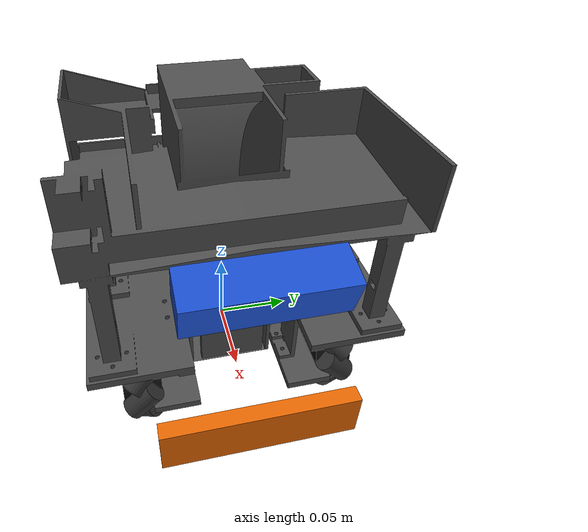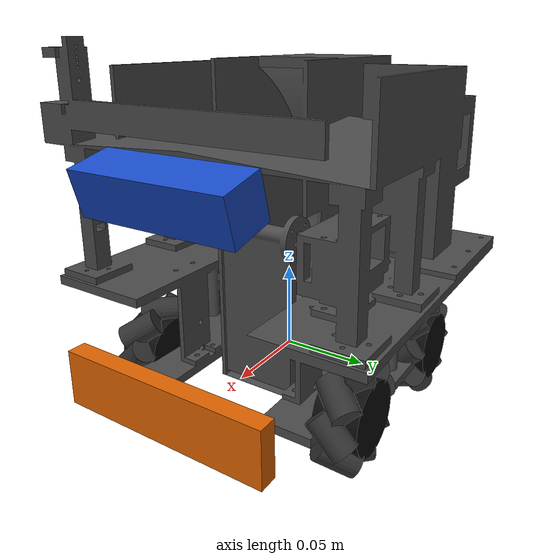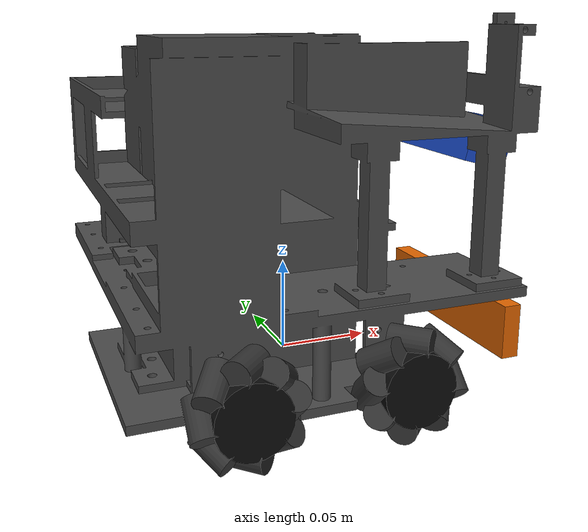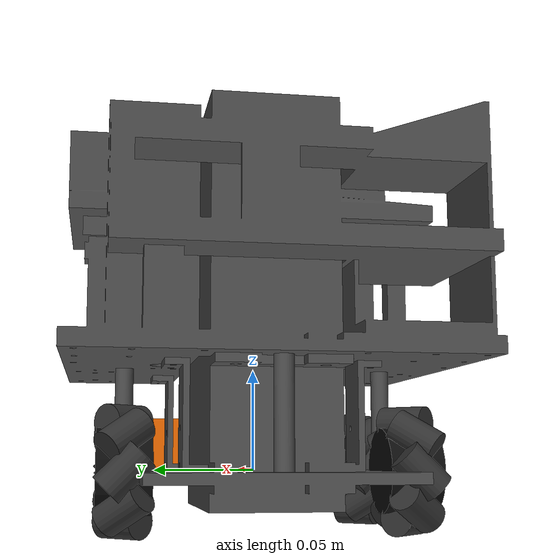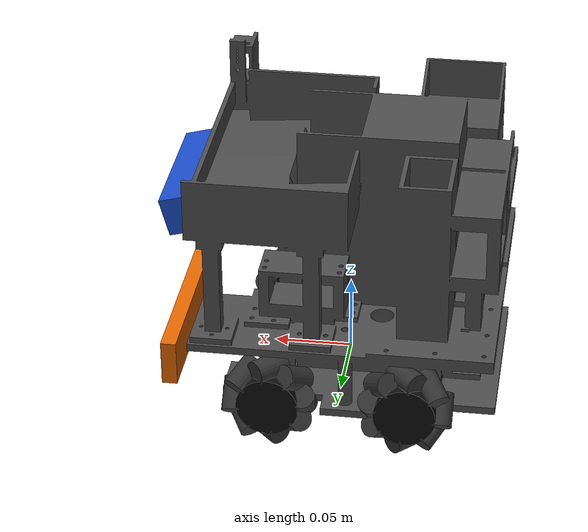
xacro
<?xml version="1.0"?>
<robot xmlns:xacro="http://www.ros.org/wiki/xacro" name="unibots_robot">

  <!-- Global properties                                             -->

  <!-- Wheel geometry -->
  <xacro:property name="wheel_radius" value="0.030"/>
  <xacro:property name="wheel_width"  value="0.025"/>
  <xacro:property name="wheel_mass"   value="0.1"/>

  <!-- Wheel centre offsets from base_link -->
  <xacro:property name="wheel_x_offset" value="0.04385"/>   <!-- 130 mm / 2 -->
  <xacro:property name="wheel_y_offset" value="0.06625"/>   <!-- 140 mm / 2 -->

  <xacro:property name="num_rollers"        value="8"/>
  <xacro:property name="roller_radius"      value="0.008"/>
  <xacro:property name="roller_length"      value="0.022"/>
  <xacro:property name="roller_mass"        value="0.005"/>
  <!-- Distance from the wheel axle to each roller's centre. -->
  <xacro:property name="roller_mount_radius" value="${wheel_radius - roller_radius}"/>
  <!-- Hub is purely structural/visual; its radius is just inside the rollers so
       it never contacts the ground (no hub collision element at all). -->
  <xacro:property name="hub_radius" value="${roller_mount_radius - 0.002}"/>
  <xacro:property name="hub_mass"   value="${wheel_mass - num_rollers*roller_mass}"/>

  <!-- Chassis box dimensions.
       ASSUMPTION: exact chassis envelope not given; approximated as a
       0.20 x 0.18 x 0.10 m box (L x W x H) for visual/collision/inertia. -->
  <xacro:property name="chassis_length" value="0.20"/>
  <xacro:property name="chassis_width"  value="0.18"/>
  <xacro:property name="chassis_height" value="0.10"/>
  <xacro:property name="chassis_mass"   value="0.8"/>

  <xacro:property name="chassis_z" value="${chassis_height/2.0}"/>

  <xacro:property name="PI" value="3.14159265358979"/>

  <!-- Inertia helper macros                                         -->

  <!-- Solid box inertia about its centre (axis-aligned):
         Ixx = (1/12) m (y^2 + z^2)
         Iyy = (1/12) m (x^2 + z^2)
         Izz = (1/12) m (x^2 + y^2)                                   -->
  <xacro:macro name="box_inertia" params="m x y z">
    <inertia
      ixx="${(1.0/12.0)*m*(y*y + z*z)}" ixy="0.0" ixz="0.0"
      iyy="${(1.0/12.0)*m*(x*x + z*z)}" iyz="0.0"
      izz="${(1.0/12.0)*m*(x*x + y*y)}"/>
  </xacro:macro>

  <xacro:macro name="cylinder_inertia" params="m r l">
    <inertia
      ixx="${(1.0/12.0)*m*(3.0*r*r + l*l)}" ixy="0.0" ixz="0.0"
      iyy="${(1.0/12.0)*m*(3.0*r*r + l*l)}" iyz="0.0"
      izz="${0.5*m*r*r}"/>
  </xacro:macro>

  <!-- Materials                                                     -->
  <material name="chassis_black">
    <color rgba="0.05 0.05 0.05 1.0"/>
  </material>
  <material name="chassis_grey">
    <color rgba="0.3 0.3 0.3 1.0"/>
  </material>
  <material name="wheel_grey">
    <color rgba="0.2 0.2 0.2 1.0"/>
  </material>
  <material name="sensor_blue">
    <color rgba="0.1 0.3 0.8 1.0"/>
  </material>
  <material name="scooper_orange">
    <color rgba="0.9 0.4 0.0 1.0"/>
  </material>

  <!-- base_link (chassis)                                           -->
  <!-- base_link origin is the geometric centre of the robot at the
       wheel-axle height (0.030 m above floor). The chassis box visual /
       collision / inertial are offset upward by chassis_z. -->
  <link name="base_link">
      <visual>
        <origin xyz="0 0 0" rpy="0 0 -1.5708"/>
        <geometry>
          <mesh filename="package://unibots_description/meshes/Chassi_Unibot.stl" scale="0.001 0.001 0.001"/>
        </geometry>
        <material name="chassis_grey"/>
      </visual>
      <collision>
        <origin xyz="0 0 ${chassis_z}" rpy="0 0 0"/>
        <geometry>
          <box size="${chassis_length} ${chassis_width} ${chassis_height}"/>
        </geometry>
      </collision>
      <inertial>
        <origin xyz="0 0 ${chassis_z}" rpy="0 0 0"/>
        <mass value="${chassis_mass}"/>
        <xacro:box_inertia m="${chassis_mass}" x="${chassis_length}" y="${chassis_width}" z="${chassis_height}"/>
      </inertial>
    </link>

  <!-- Mecanum roller macro (recursive)                              -->
  <xacro:macro name="mecanum_rollers" params="name h n i:=0">
    <xacro:if value="${i &lt; n}">
      <!-- Orientation-only carrier frame (fixed to the hub, hence lumped). -->
      <link name="${name}_carrier_${i}">
        <inertial>
          <mass value="1e-5"/>
          <inertia ixx="1e-9" ixy="0" ixz="0" iyy="1e-9" iyz="0" izz="1e-9"/>
        </inertial>
      </link>
      <joint name="${name}_carrier_${i}_joint" type="fixed">
        <parent link="${name}"/>
        <child link="${name}_carrier_${i}"/>
        <origin xyz="0 0 0" rpy="0 ${2.0*PI*i/n} 0"/>
      </joint>

      <!-- Passive free-spinning roller at the rim, axis at 45 deg. -->
      <link name="${name}_roller_${i}">
        <visual>
          <origin xyz="0 0 0" rpy="0 0 0"/>
          <geometry>
            <cylinder radius="${roller_radius}" length="${roller_length}"/>
          </geometry>
          <material name="wheel_grey"/>
        </visual>
        <collision>
          <origin xyz="0 0 0" rpy="0 0 0"/>
          <geometry>
            <cylinder radius="${roller_radius}" length="${roller_length}"/>
          </geometry>
        </collision>
        <inertial>
          <mass value="${roller_mass}"/>
          <xacro:cylinder_inertia m="${roller_mass}"
                                  r="${roller_radius}"
                                  l="${roller_length}"/>
        </inertial>
      </link>
      <joint name="${name}_roller_${i}_joint" type="continuous">
        <parent link="${name}_carrier_${i}"/>
        <child link="${name}_roller_${i}"/>
        <origin xyz="0 0 ${roller_mount_radius}" rpy="0 ${PI/2.0} ${h*PI/4.0}"/>
        <axis xyz="0 0 1"/>
        <dynamics damping="0.003" friction="0.005"/>
      </joint>

      <!-- Roller-ground contact friction (gentle stiffness for stability). -->
      <gazebo reference="${name}_roller_${i}">
        <mu1>1.0</mu1>
        <mu2>1.0</mu2>
        <kp>200000.0</kp>
        <kd>10.0</kd>
        <material>Gazebo/Grey</material>
      </gazebo>

      <!-- Recurse to the next roller. -->
      <xacro:mecanum_rollers name="${name}" h="${h}" n="${n}" i="${i+1}"/>
    </xacro:if>
  </xacro:macro>

  <!-- Mecanum wheel macro (hub + rollers)                           -->
  <xacro:macro name="wheel" params="name x y h">
    <link name="${name}">
      <visual>
        <origin xyz="0 0 0" rpy="${PI/2.0} 0 0"/>
        <geometry>
          <cylinder radius="${hub_radius}" length="${wheel_width}"/>
        </geometry>
        <material name="chassis_black"/>
      </visual>
      <inertial>
        <origin xyz="0 0 0" rpy="${PI/2.0} 0 0"/>
        <mass value="${hub_mass}"/>
        <xacro:cylinder_inertia m="${hub_mass}"
                                r="${hub_radius}"
                                l="${wheel_width}"/>
      </inertial>
    </link>

    <joint name="${name}_joint" type="continuous">
      <parent link="base_link"/>
      <child link="${name}"/>
      <!-- Wheel joints sit at the axle plane (z = 0 in base_link). -->
      <origin xyz="${x} ${y} 0" rpy="0 0 0"/>
      <axis xyz="0 1 0"/>
      <dynamics damping="0.001" friction="0.0"/>
    </joint>

    <xacro:mecanum_rollers name="${name}" h="${h}" n="${num_rollers}"/>
  </xacro:macro>

  <!-- Wheel instances.
       fl=(+x,+y) fr=(+x,-y) rl=(-x,+y) rr=(-x,-y)
       Roller handedness: FL & RR = +1, FR & RL = -1 (standard mecanum). -->
  <xacro:wheel name="wheel_fl" x="${ wheel_x_offset}" y="${ wheel_y_offset}" h="1"/>
  <xacro:wheel name="wheel_fr" x="${ wheel_x_offset}" y="${-wheel_y_offset}" h="-1"/>
  <xacro:wheel name="wheel_rl" x="${-wheel_x_offset}" y="${ wheel_y_offset}" h="-1"/>
  <xacro:wheel name="wheel_rr" x="${-wheel_x_offset}" y="${-wheel_y_offset}" h="1"/>

  <!-- Camera                                                        -->
  <link name="camera_link">
    <visual>
      <origin xyz="0 0 0" rpy="0 0 0"/>
      <geometry>
        <box size="0.025 0.090 0.025"/>
      </geometry>
      <material name="sensor_blue"/>
    </visual>
    <collision>
      <origin xyz="0 0 0" rpy="0 0 0"/>
      <geometry>
        <box size="0.025 0.090 0.025"/>
      </geometry>
    </collision>
    <inertial>
      <mass value="0.03"/>
      <xacro:box_inertia m="0.03" x="0.025" y="0.090" z="0.025"/>
    </inertial>
  </link>

  <!-- High-mounted USB webcam: 70 mm forward, 250 mm above floor,
       15 deg (0.2618 rad) downward pitch. -->
  <joint name="camera_joint" type="fixed">
    <parent link="base_link"/>
    <child link="camera_link"/>
    <origin xyz="0.09991 0.0 0.1175" rpy="0 0.2618 0"/>
  </joint>

  <!-- Optical frame: ROS image convention (z forward, x right, y down). -->
  <link name="camera_optical_frame"/>
  <joint name="camera_optical_joint" type="fixed">
    <parent link="camera_link"/>
    <child link="camera_optical_frame"/>
    <origin xyz="0 0 0" rpy="-1.5708 0 -1.5708"/>
  </joint>

  <!-- Scooper / intake gap marker                                   -->
  <!-- Marks the physical intake gap at the front; used for camera
       blind-spot calculations. -->
  <link name="scooper_link">
    <visual>
      <origin xyz="0 0 0" rpy="0 0 0"/>
      <geometry>
        <box size="0.010 0.120 0.030"/>
      </geometry>
      <material name="scooper_orange"/>
    </visual>
  </link>
  <joint name="scooper_joint" type="fixed">
    <parent link="base_link"/>
    <child link="scooper_link"/>
    <origin xyz="0.110 0.0 0.015" rpy="0 0 0"/>
  </joint>

  <!-- IMU (BNO055)                                                  -->
  <link name="imu_link">
    <inertial>
      <mass value="0.005"/>
      <inertia ixx="1e-6" ixy="0" ixz="0" iyy="1e-6" iyz="0" izz="1e-6"/>
    </inertial>
  </link>
  <joint name="imu_joint" type="fixed">
    <parent link="base_link"/>
    <child link="imu_link"/>
    <!-- xyz "0 0 0" relative to base_link == chassis centre at axle height. -->
    <origin xyz="0 0 0" rpy="0 0 0"/>
  </joint>

  <!-- ros2_control hardware interface                               -->
  <ros2_control name="UnibotsGazeboSystem" type="system">
    <hardware>
      <plugin>gz_ros2_control/GazeboSimSystem</plugin>
    </hardware>

    <joint name="wheel_fl_joint">
      <command_interface name="velocity"/>
      <state_interface name="position"/>
      <state_interface name="velocity"/>
    </joint>
    <joint name="wheel_fr_joint">
      <command_interface name="velocity"/>
      <state_interface name="position"/>
      <state_interface name="velocity"/>
    </joint>
    <joint name="wheel_rl_joint">
      <command_interface name="velocity"/>
      <state_interface name="position"/>
      <state_interface name="velocity"/>
    </joint>
    <joint name="wheel_rr_joint">
      <command_interface name="velocity"/>
      <state_interface name="position"/>
      <state_interface name="velocity"/>
    </joint>
  </ros2_control>

  <!-- Gazebo: gz_ros2_control plugin                                -->
  <gazebo>
    <plugin filename="libgz_ros2_control-system.so"
            name="gz_ros2_control::GazeboSimROS2ControlPlugin">
      <!-- Controllers YAML loaded by the controller_manager. -->
      <parameters>$(find unibots_description)/config/robot_controllers.yaml</parameters>
    </plugin>
  </gazebo>

  <!-- Gazebo: wheel friction / material                             -->
  <xacro:macro name="wheel_hub_gazebo" params="name">
    <gazebo reference="${name}">
      <material>Gazebo/Black</material>
    </gazebo>
  </xacro:macro>
  <xacro:wheel_hub_gazebo name="wheel_fl"/>
  <xacro:wheel_hub_gazebo name="wheel_fr"/>
  <xacro:wheel_hub_gazebo name="wheel_rl"/>
  <xacro:wheel_hub_gazebo name="wheel_rr"/>

  <gazebo reference="base_link">
    <material>Gazebo/Black</material>
  </gazebo>

  <!-- Gazebo: camera sensor (Harmonic SDF)                          -->
  <gazebo reference="camera_link">
    <sensor name="camera" type="camera">
      <pose>0 0 0 0 0 0</pose>
      <update_rate>30</update_rate>
      <always_on>1</always_on>
      <visualize>true</visualize>
      <topic>camera</topic>
      <camera>
        <!-- ~70 deg horizontal FOV USB webcam (1.204 rad). -->
        <horizontal_fov>1.204</horizontal_fov>
        <image>
          <width>640</width>
          <height>480</height>
          <format>R8G8B8</format>
        </image>
        <clip>
          <near>0.02</near>
          <far>20.0</far>
        </clip>
        <!-- Report data in the ROS optical frame for correct image axes. -->
        <optical_frame_id>camera_optical_frame</optical_frame_id>
      </camera>
    </sensor>
  </gazebo>

  <!-- Gazebo: IMU sensor (Harmonic SDF)                             -->
  <gazebo reference="imu_link">
    <sensor name="imu" type="imu">
      <always_on>1</always_on>
      <update_rate>100</update_rate>
      <visualize>false</visualize>
      <topic>imu</topic>
      <enable_metrics>false</enable_metrics>
      <imu>
        <angular_velocity>
          <x><noise type="gaussian"><mean>0.0</mean><stddev>0.0002</stddev></noise></x>
          <y><noise type="gaussian"><mean>0.0</mean><stddev>0.0002</stddev></noise></y>
          <z><noise type="gaussian"><mean>0.0</mean><stddev>0.0002</stddev></noise></z>
        </angular_velocity>
        <linear_acceleration>
          <x><noise type="gaussian"><mean>0.0</mean><stddev>0.017</stddev></noise></x>
          <y><noise type="gaussian"><mean>0.0</mean><stddev>0.017</stddev></noise></y>
          <z><noise type="gaussian"><mean>0.0</mean><stddev>0.017</stddev></noise></z>
        </linear_acceleration>
      </imu>
    </sensor>
  </gazebo>
  <gazebo>
    <plugin filename="gz-sim-pose-publisher-system" name="gz::sim::systems::PosePublisher">
      <publish_link_pose>false</publish_link_pose>
      <publish_visual_pose>false</publish_visual_pose>
      <publish_collision_pose>false</publish_collision_pose>
      <publish_sensor_pose>false</publish_sensor_pose>
      <publish_model_pose>true</publish_model_pose>
      <publish_nested_model_pose>false</publish_nested_model_pose>
      <use_pose_vector_msg>false</use_pose_vector_msg>
      <update_frequency>30</update_frequency>
    </plugin>
  </gazebo>
</robot>
